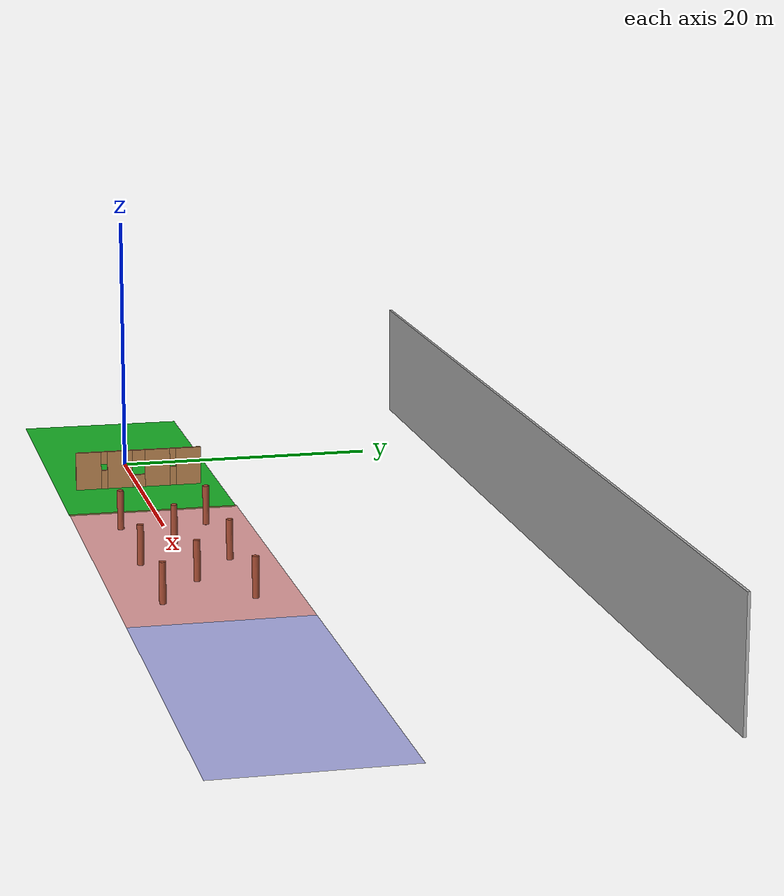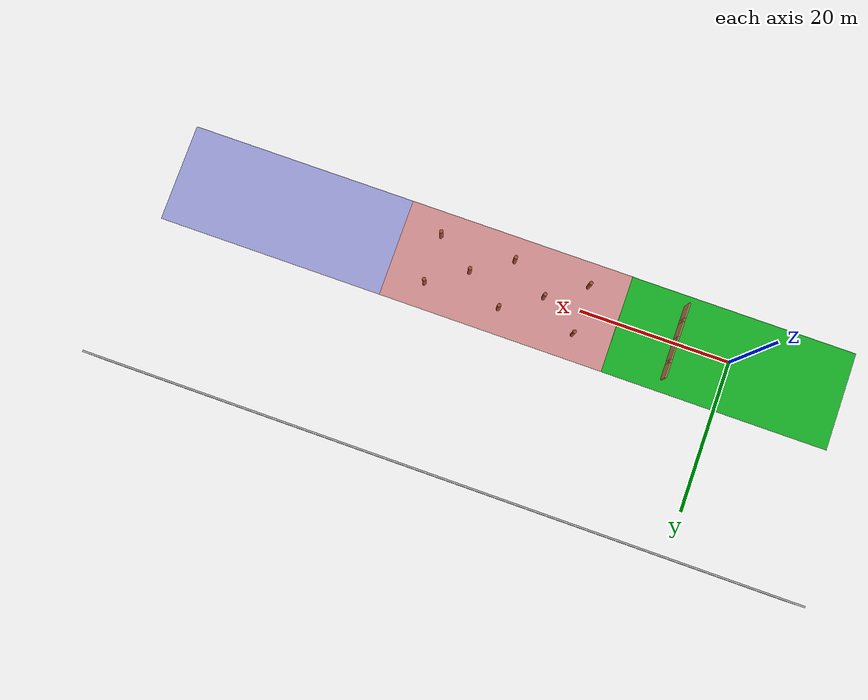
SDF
<?xml version="1.0" ?>
<!-- |    This document was autogenerated by xacro from imav_world.world.xacro         | -->
<!-- |    EDITING THIS FILE BY HAND IS NOT RECOMMENDED                                 | -->
<sdf version="1.6">
  <world name="imav_world" xmlns:xacro="http://www.ros.org/wiki/xacro">
    <light name="sun" type="directional">
      <cast_shadows>1</cast_shadows>
      <pose>0 0 10 0 -0 0</pose>
      <diffuse>0.8 0.8 0.8 1</diffuse>
      <specular>0.2 0.2 0.2 1</specular>
      <attenuation>
        <range>1000</range>
        <constant>0.9</constant>
        <linear>0.01</linear>
        <quadratic>0.001</quadratic>
      </attenuation>
      <direction>-0.5 0.1 -0.9</direction>
    </light>
    <physics type="ode">
      <max_step_size>0.001</max_step_size>
      <real_time_factor>1</real_time_factor>
      <real_time_update_rate>1000</real_time_update_rate>
    </physics>
    <gravity>0 0 -9.8</gravity>
    <gui fullscreen="0">
      <camera name="user_camera">
        <pose>1.49016 -3.72367 3.62379 -2.88294e-17 0.273797 1.4042</pose>
        <view_controller>orbit</view_controller>
      </camera>
    </gui>
    <scene>
      <ambient>0.4 0.4 0.4 1</ambient>
      <background>0.7 0.7 0.7 1</background>
      <sky>
        <clouds>
          <speed>12</speed>
        </clouds>
      </sky>
      <shadows>1</shadows>
      <grid>0</grid>
    </scene>
    <model name="takoff_landing_zone">
      <static>1</static>
      <pose>0 0 0 0 0 0</pose>
      <link name="link">
        <collision name="collision">
          <geometry>
            <plane>
              <normal>0 0 1</normal>
              <size>30 13</size>
            </plane>
          </geometry>
          <surface>
            <friction>
              <ode>
                <mu>100</mu>
                <mu2>50</mu2>
              </ode>
            </friction>
            <bounce/>
            <contact>
              <ode/>
            </contact>
          </surface>
          <max_contacts>10</max_contacts>
        </collision>
        <visual name="visual">
          <cast_shadows>0</cast_shadows>
          <geometry>
            <plane>
              <normal>0 0 1</normal>
              <size>30 13</size>
            </plane>
          </geometry>
          <material>
            <ambient>0.0862745098039  0.690196078431 0.145098039216 0.5</ambient>
          </material>
        </visual>
        <velocity_decay>
          <linear>0</linear>
          <angular>0</angular>
        </velocity_decay>
        <self_collide>0</self_collide>
        <kinematic>0</kinematic>
        <gravity>1</gravity>
      </link>
    </model>
    <model name="obstacle_zone">
      <static>1</static>
      <pose>30.0 0 0 0 0 0</pose>
      <link name="link">
        <collision name="collision">
          <geometry>
            <plane>
              <normal>0 0 1</normal>
              <size>30 13</size>
            </plane>
          </geometry>
          <surface>
            <friction>
              <ode>
                <mu>100</mu>
                <mu2>50</mu2>
              </ode>
            </friction>
            <bounce/>
            <contact>
              <ode/>
            </contact>
          </surface>
          <max_contacts>10</max_contacts>
        </collision>
        <visual name="visual">
          <cast_shadows>0</cast_shadows>
          <geometry>
            <plane>
              <normal>0 0 1</normal>
              <size>30 13</size>
            </plane>
          </geometry>
          <material>
            <ambient>0.737254901961 0.207843137255  0.207843137255 0.5</ambient>
          </material>
        </visual>
        <velocity_decay>
          <linear>0</linear>
          <angular>0</angular>
        </velocity_decay>
        <self_collide>0</self_collide>
        <kinematic>0</kinematic>
        <gravity>1</gravity>
      </link>
    </model>
    <model name="target_zone">
      <static>1</static>
      <pose>60.0 0 0 0 0 0</pose>
      <link name="link">
        <collision name="collision">
          <geometry>
            <plane>
              <normal>0 0 1</normal>
              <size>30 13</size>
            </plane>
          </geometry>
          <surface>
            <friction>
              <ode>
                <mu>100</mu>
                <mu2>50</mu2>
              </ode>
            </friction>
            <bounce/>
            <contact>
              <ode/>
            </contact>
          </surface>
          <max_contacts>10</max_contacts>
        </collision>
        <visual name="visual">
          <cast_shadows>0</cast_shadows>
          <geometry>
            <plane>
              <normal>0 0 1</normal>
              <size>30 13</size>
            </plane>
          </geometry>
          <material>
            <ambient>0.305882352941  0.325490196078  0.780392156863 0.5</ambient>
          </material>
        </visual>
        <velocity_decay>
          <linear>0</linear>
          <angular>0</angular>
        </velocity_decay>
        <self_collide>0</self_collide>
        <kinematic>0</kinematic>
        <gravity>1</gravity>
      </link>
    </model>
    <model name="wall">
      <static>1</static>
      <pose>7.5 0 1.5 0 0 0</pose>
      <link name="wall_link">
        <inertial>
          <mass>10000</mass>
        </inertial>
        <collision name="wall_p1_collision">
          <pose>0 1.5 0 0 0 0</pose>
          <geometry>
            <box>
              <size>0.2 2 3</size>
            </box>
          </geometry>
          <surface>
            <contact>
              <collide_bitmask>0x02</collide_bitmask>
            </contact>
          </surface>
        </collision>
        <visual name="wall_p1_visual">
          <pose>0 1.5 0 0 0 0</pose>
          <geometry>
            <box>
              <size>0.2 2 3</size>
            </box>
          </geometry>
          <material>
            <script>
              <name>Gazebo/Wood</name>
            </script>
          </material>
        </visual>
        <collision name="wall_p2_collision">
          <pose>0 4.0 0 0 0 0</pose>
          <geometry>
            <box>
              <size>0.2 2 3</size>
            </box>
          </geometry>
          <surface>
            <contact>
              <collide_bitmask>0x02</collide_bitmask>
            </contact>
          </surface>
        </collision>
        <visual name="wall_p2_visual">
          <pose>0 4.0 0 0 0 0</pose>
          <geometry>
            <box>
              <size>0.2 2 3</size>
            </box>
          </geometry>
          <material>
            <script>
              <name>Gazebo/Wood</name>
            </script>
          </material>
        </visual>
        <collision name="wall_p3_collision">
          <pose>0 -1.5 0 0 0 0</pose>
          <geometry>
            <box>
              <size>0.2 2 3</size>
            </box>
          </geometry>
          <surface>
            <contact>
              <collide_bitmask>0x02</collide_bitmask>
            </contact>
          </surface>
        </collision>
        <visual name="wall_p3_visual">
          <pose>0 -1.5 0 0 0 0</pose>
          <geometry>
            <box>
              <size>0.2 2 3</size>
            </box>
          </geometry>
          <material>
            <script>
              <name>Gazebo/Wood</name>
            </script>
          </material>
        </visual>
        <collision name="wall_p4_collision">
          <pose>0 -4.0 0 0 0 0</pose>
          <geometry>
            <box>
              <size>0.2 2 3</size>
            </box>
          </geometry>
          <surface>
            <contact>
              <collide_bitmask>0x02</collide_bitmask>
            </contact>
          </surface>
        </collision>
        <visual name="wall_p4_visual">
          <pose>0 -4.0 0 0 0 0</pose>
          <geometry>
            <box>
              <size>0.2 2 3</size>
            </box>
          </geometry>
          <material>
            <script>
              <name>Gazebo/Wood</name>
            </script>
          </material>
        </visual>
        <collision name="wall_p5_collision">
          <pose>0 0 -1.0 0 0 0</pose>
          <geometry>
            <box>
              <size>0.2 1 1</size>
            </box>
          </geometry>
          <surface>
            <contact>
              <collide_bitmask>0x02</collide_bitmask>
            </contact>
          </surface>
        </collision>
        <visual name="wall_p5_visual">
          <pose>0 0 -1.0 0 0 0</pose>
          <geometry>
            <box>
              <size>0.2 1 1</size>
            </box>
          </geometry>
          <material>
            <script>
              <name>Gazebo/Wood</name>
            </script>
          </material>
        </visual>
        <collision name="wall_p6_collision">
          <pose>0 2.75 -0.75 0 0 0</pose>
          <geometry>
            <box>
              <size>0.2 0.5 1.5</size>
            </box>
          </geometry>
          <surface>
            <contact>
              <collide_bitmask>0x02</collide_bitmask>
            </contact>
          </surface>
        </collision>
        <visual name="wall_p6_visual">
          <pose>0 2.75 -0.75 0 0 0</pose>
          <geometry>
            <box>
              <size>0.2 0.5 1.5</size>
            </box>
          </geometry>
          <material>
            <script>
              <name>Gazebo/Wood</name>
            </script>
          </material>
        </visual>
        <collision name="wall_p7_collision">
          <pose>0 -2.75 -0.75 0 0 0</pose>
          <geometry>
            <box>
              <size>0.2 0.5 1.5</size>
            </box>
          </geometry>
          <surface>
            <contact>
              <collide_bitmask>0x02</collide_bitmask>
            </contact>
          </surface>
        </collision>
        <visual name="wall_p7_visual">
          <pose>0 -2.75 -0.75 0 0 0</pose>
          <geometry>
            <box>
              <size>0.2 0.5 1.5</size>
            </box>
          </geometry>
          <material>
            <script>
              <name>Gazebo/Wood</name>
            </script>
          </material>
        </visual>
        <collision name="wall_p8_collision">
          <pose>0 0 1.0 0 0 0</pose>
          <geometry>
            <box>
              <size>0.2 1 1</size>
            </box>
          </geometry>
          <surface>
            <contact>
              <collide_bitmask>0x02</collide_bitmask>
            </contact>
          </surface>
        </collision>
        <visual name="wall_p8_visual">
          <pose>0 0 1.0 0 0 0</pose>
          <geometry>
            <box>
              <size>0.2 1 1</size>
            </box>
          </geometry>
          <material>
            <script>
              <name>Gazebo/Wood</name>
            </script>
          </material>
        </visual>
        <collision name="wall_p9_collision">
          <pose>0 2.75 1 0 0 0</pose>
          <geometry>
            <box>
              <size>0.2 0.5 1</size>
            </box>
          </geometry>
          <surface>
            <contact>
              <collide_bitmask>0x02</collide_bitmask>
            </contact>
          </surface>
        </collision>
        <visual name="wall_p9_visual">
          <pose>0 2.75 1 0 0 0</pose>
          <geometry>
            <box>
              <size>0.2 0.5 1</size>
            </box>
          </geometry>
          <material>
            <script>
              <name>Gazebo/Wood</name>
            </script>
          </material>
        </visual>
        <collision name="wall_p10_collision">
          <pose>0 -2.75 1 0 0 0</pose>
          <geometry>
            <box>
              <size>0.2 0.5 1</size>
            </box>
          </geometry>
          <surface>
            <contact>
              <collide_bitmask>0x02</collide_bitmask>
            </contact>
          </surface>
        </collision>
        <visual name="wall_p10_visual">
          <pose>0 -2.75 1 0 0 0</pose>
          <geometry>
            <box>
              <size>0.2 0.5 1</size>
            </box>
          </geometry>
          <material>
            <script>
              <name>Gazebo/Wood</name>
            </script>
          </material>
        </visual>
      </link>
    </model>
    <model name="branded_wall">
      <static>true</static>
      <pose>30.0 26 4.5 0 0 0</pose>
      <link name="wall_link">
        <inertial>
          <mass>10000</mass>
        </inertial>
        <collision name="wall_brand_collision">
          <geometry>
            <box>
              <size>90 0.2 9</size>
            </box>
          </geometry>
          <surface>
            <contact>
              <collide_bitmask>0x02</collide_bitmask>
            </contact>
          </surface>
        </collision>
        <visual name="wall_brand_visual">
          <geometry>
            <box>
              <size>90 0.2 9</size>
            </box>
          </geometry>
          <material>
            <script>
              <uri>file:///home/vince/catkin_ws/src/imav_2017/worlds/xacro/custom.material</uri>
              <name>MathWorks_branding</name>
            </script>
          </material>
        </visual>
      </link>
    </model>
    <model name="poles">
      <static>1</static>
      <pose>30.0 0 1.5 0 0 0</pose>
      <link name="poles_link">
        <inertial>
          <mass>10000</mass>
        </inertial>
        <collision name="pole_p1_collision">
          <pose>0 3.25 0 0 0 0</pose>
          <geometry>
            <cylinder>
              <radius>0.25</radius>
              <length>3</length>
            </cylinder>
          </geometry>
          <surface>
            <contact>
              <collide_bitmask>0x02</collide_bitmask>
            </contact>
          </surface>
        </collision>
        <visual name="pole_p1_visual">
          <pose>0 3.25 0 0 0 0</pose>
          <geometry>
            <cylinder>
              <radius>0.25</radius>
              <length>3</length>
            </cylinder>
          </geometry>
          <material>
            <script>
              <name>Gazebo/Bricks</name>
            </script>
          </material>
        </visual>
        <collision name="pole_p2_collision">
          <pose>10.0 3.25 0 0 0 0</pose>
          <geometry>
            <cylinder>
              <radius>0.25</radius>
              <length>3</length>
            </cylinder>
          </geometry>
          <surface>
            <contact>
              <collide_bitmask>0x02</collide_bitmask>
            </contact>
          </surface>
        </collision>
        <visual name="pole_p2_visual">
          <pose>10.0 3.25 0 0 0 0</pose>
          <geometry>
            <cylinder>
              <radius>0.25</radius>
              <length>3</length>
            </cylinder>
          </geometry>
          <material>
            <script>
              <name>Gazebo/Bricks</name>
            </script>
          </material>
        </visual>
        <collision name="pole_p3_collision">
          <pose>-10.0 3.25 0 0 0 0</pose>
          <geometry>
            <cylinder>
              <radius>0.25</radius>
              <length>3</length>
            </cylinder>
          </geometry>
          <surface>
            <contact>
              <collide_bitmask>0x02</collide_bitmask>
            </contact>
          </surface>
        </collision>
        <visual name="pole_p3_visual">
          <pose>-10.0 3.25 0 0 0 0</pose>
          <geometry>
            <cylinder>
              <radius>0.25</radius>
              <length>3</length>
            </cylinder>
          </geometry>
          <material>
            <script>
              <name>Gazebo/Bricks</name>
            </script>
          </material>
        </visual>
        <collision name="pole_p4_collision">
          <pose>5.0 0 0 0 0 0</pose>
          <geometry>
            <cylinder>
              <radius>0.25</radius>
              <length>3</length>
            </cylinder>
          </geometry>
          <surface>
            <contact>
              <collide_bitmask>0x02</collide_bitmask>
            </contact>
          </surface>
        </collision>
        <visual name="pole_p4_visual">
          <pose>5.0 0 0 0 0 0</pose>
          <geometry>
            <cylinder>
              <radius>0.25</radius>
              <length>3</length>
            </cylinder>
          </geometry>
          <material>
            <script>
              <name>Gazebo/Bricks</name>
            </script>
          </material>
        </visual>
        <collision name="pole_p5_collision">
          <pose>-5.0 0 0 0 0 0</pose>
          <geometry>
            <cylinder>
              <radius>0.25</radius>
              <length>3</length>
            </cylinder>
          </geometry>
          <surface>
            <contact>
              <collide_bitmask>0x02</collide_bitmask>
            </contact>
          </surface>
        </collision>
        <visual name="pole_p5_visual">
          <pose>-5.0 0 0 0 0 0</pose>
          <geometry>
            <cylinder>
              <radius>0.25</radius>
              <length>3</length>
            </cylinder>
          </geometry>
          <material>
            <script>
              <name>Gazebo/Bricks</name>
            </script>
          </material>
        </visual>
        <collision name="pole_p6_collision">
          <pose>0 -3.25 0 0 0 0</pose>
          <geometry>
            <cylinder>
              <radius>0.25</radius>
              <length>3</length>
            </cylinder>
          </geometry>
          <surface>
            <contact>
              <collide_bitmask>0x02</collide_bitmask>
            </contact>
          </surface>
        </collision>
        <visual name="pole_p6_visual">
          <pose>0 -3.25 0 0 0 0</pose>
          <geometry>
            <cylinder>
              <radius>0.25</radius>
              <length>3</length>
            </cylinder>
          </geometry>
          <material>
            <script>
              <name>Gazebo/Bricks</name>
            </script>
          </material>
        </visual>
        <collision name="pole_p7_collision">
          <pose>10.0 -3.25 0 0 0 0</pose>
          <geometry>
            <cylinder>
              <radius>0.25</radius>
              <length>3</length>
            </cylinder>
          </geometry>
          <surface>
            <contact>
              <collide_bitmask>0x02</collide_bitmask>
            </contact>
          </surface>
        </collision>
        <visual name="pole_p7_visual">
          <pose>10.0 -3.25 0 0 0 0</pose>
          <geometry>
            <cylinder>
              <radius>0.25</radius>
              <length>3</length>
            </cylinder>
          </geometry>
          <material>
            <script>
              <name>Gazebo/Bricks</name>
            </script>
          </material>
        </visual>
        <collision name="pole_p8_collision">
          <pose>-10.0 -3.25 0 0 0 0</pose>
          <geometry>
            <cylinder>
              <radius>0.25</radius>
              <length>3</length>
            </cylinder>
          </geometry>
          <surface>
            <contact>
              <collide_bitmask>0x02</collide_bitmask>
            </contact>
          </surface>
        </collision>
        <visual name="pole_p8_visual">
          <pose>-10.0 -3.25 0 0 0 0</pose>
          <geometry>
            <cylinder>
              <radius>0.25</radius>
              <length>3</length>
            </cylinder>
          </geometry>
          <material>
            <script>
              <name>Gazebo/Bricks</name>
            </script>
          </material>
        </visual>
      </link>
    </model>
  </world>
</sdf>
